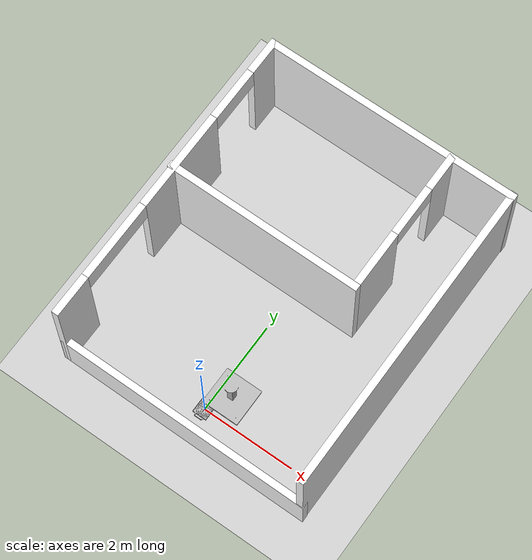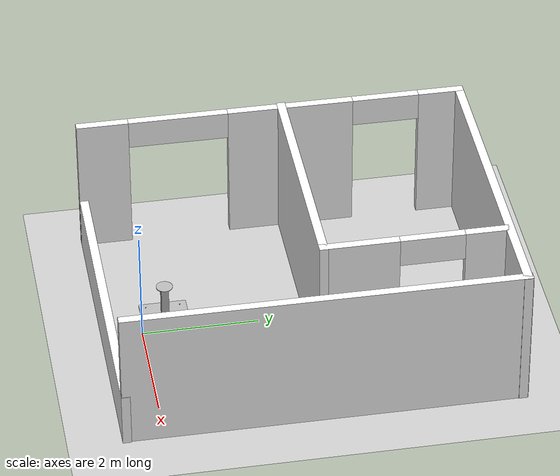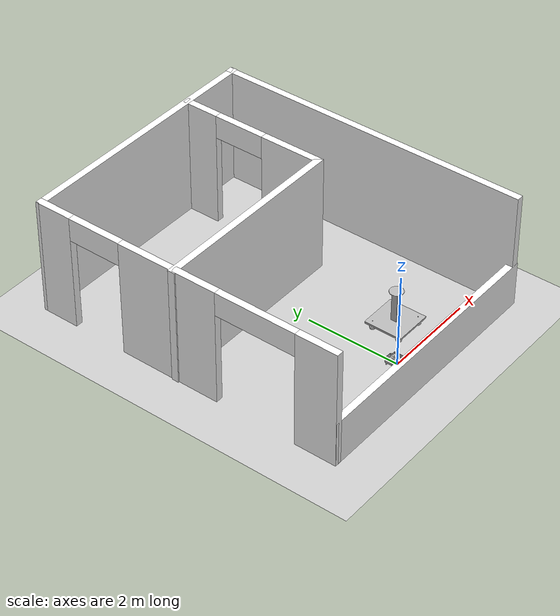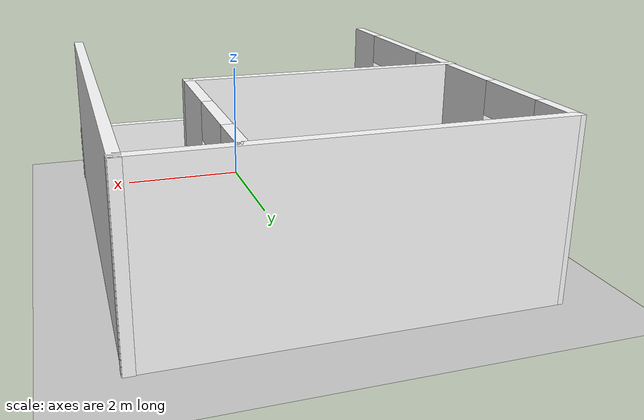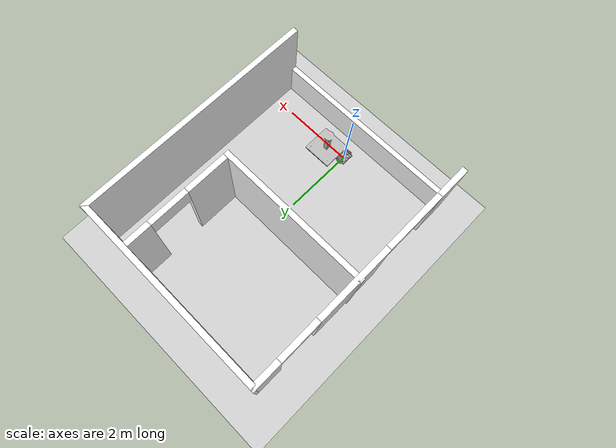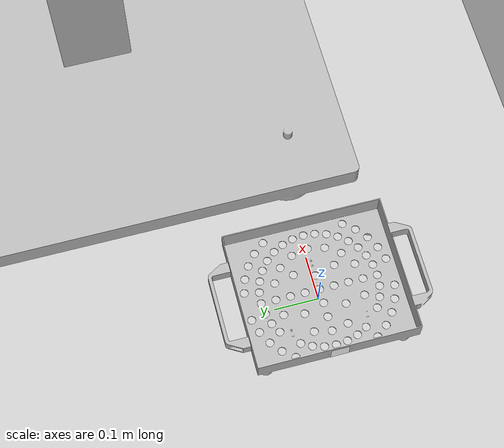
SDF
<sdf version="1.6">
 <world name="default">
  <light name="sun" type="directional">
   <pose>0 0 10 0 -0 0</pose>
   <diffuse>0.8 0.8 0.8 1</diffuse>
   <specular>0.2 0.2 0.2 1</specular>
   <attenuation>
    <range>1000</range>
    <constant>0.9</constant>
    <linear>0.01</linear>
    <quadratic>0.001</quadratic>
   </attenuation>
   <direction>-0.5 0.1 -0.9</direction>
  </light>
  <model name="ground_plane">
   <static>1</static>
   <link name="link">
    <collision name="collision">
     <geometry><plane><normal>0 0 1</normal><size>100 100</size></plane></geometry>
     <surface>
      <contact><collide_bitmask>65535</collide_bitmask></contact>
      <friction><ode><mu>100</mu><mu2>50</mu2></ode></friction>
     </surface>
     <max_contacts>99999999</max_contacts>
    </collision>
    <visual name="visual">
     <cast_shadows>0</cast_shadows>
     <geometry><plane><normal>0 0 1</normal><size>100 100</size></plane></geometry>
     <material>
      <script><uri>file://media/materials/scripts/gazebo.material</uri><name>Gazebo/Grey</name></script>
     </material>
    </visual>
   </link>
  </model>
  <gravity>0 0 -9.8</gravity>
  <magnetic_field>6e-06 2.3e-05 -4.2e-05</magnetic_field>
  <atmosphere type="adiabatic"/>
  <physics name="default_physics" default="0" type="ode">
   <max_contacts>100</max_contacts>
   <max_step_size>0.001</max_step_size>
   <real_time_factor>1</real_time_factor>
   <real_time_update_rate>1000</real_time_update_rate>
   <ode>
    <solver>
     <type>quick</type>
     <iters>50</iters>
     <sor>1.3</sor>
     <use_dynamic_moi_rescaling>0</use_dynamic_moi_rescaling>
    </solver>
    <constraints>
     <cfm>0</cfm>
     <erp>0.2</erp>
     <contact_max_correcting_vel>100</contact_max_correcting_vel>
     <contact_surface_layer>0.001</contact_surface_layer>
    </constraints>
   </ode>
  </physics>
  <scene><ambient>0.4 0.4 0.4 1</ambient><background>0.7 0.7 0.7 1</background><shadows>1</shadows></scene>
  <audio><device>default</device></audio>
  <spherical_coordinates>
   <surface_model>EARTH_WGS84</surface_model>
   <latitude_deg>0</latitude_deg>
   <longitude_deg>0</longitude_deg>
   <elevation>0</elevation>
   <heading_deg>0</heading_deg>
  </spherical_coordinates>
  <include><uri>model://UR10Base</uri><name>UR10Base</name></include>
  <include><uri>model://UR10Base</uri><name>UR10Base_1</name></include>
  <include><uri>model://CssdTray0</uri><name>CssdTray0</name></include>
  <include><uri>model://CssdTray0</uri><name>CssdTray0_1</name></include>
  <include><uri>model://CssdTray1</uri><name>CssdTray1</name></include>
  <include><uri>model://CssdTray2</uri><name>CssdTray2</name></include>
  <include><uri>model://CssdTray3</uri><name>CssdTray3</name></include>
  <include><uri>model://cssd_room</uri><name>CssdRoom</name><pose>-5 2.7 0 0 0 3.14</pose></include>
 </world>
</sdf>

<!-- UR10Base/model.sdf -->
<sdf version="1.5">
  <model name="UR10Base">
    <static>true</static>
    <link name="link">
      <pose>0 0 0 0 0 0</pose>

        <visual name="visual">
          <geometry>
            <mesh>
              <scale>0.001 0.001 0.001</scale>
              <uri>model://UR10Base/meshes/base.obj</uri>
            </mesh>
          </geometry>
        </visual>

        <collision name="collision">
          <geometry>
            <mesh>
              <scale>0.001 0.001 0.001</scale>
              <uri>model://UR10Base/meshes/base.obj</uri>
            </mesh>
          </geometry>
        </collision>

    </link>
  </model>
</sdf>

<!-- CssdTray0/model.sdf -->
<sdf version='1.6'>
  <model name='CssdTray0'>
    <allow_auto_disable>0</allow_auto_disable>
    <static>0</static>

    <include>
      <uri>model://CssdTray</uri>
      <name>base</name>
    </include>

    <include>
      <name>aruco_tag</name>
      <uri>model://aruco_visual_marker_0</uri>
      <pose> -0.154 0.0 0.0824 0 -1.57 0.0</pose>
      <static>true</static>
    </include>

    <joint name="aruco_tag_joint" type="revolute">
      <parent>base::tray</parent>
      <child>aruco_tag::marker</child>
      <!-- Common hack to make this a "fixed" joint -->
      <axis>
        <limit>
          <lower>0.0</lower>
          <upper>0.0</upper>
        </limit>
      </axis>

    </joint>
  </model>
</sdf>

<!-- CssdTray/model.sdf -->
<sdf version="1.6">
  <model name="CssdTray">
    <static>false</static>
    <link name="tray">
      <pose> 0 0 0 0 0 3.14 </pose>
       <inertial>
         <!-- tentative mass -->
        <mass>5.0</mass>
        <pose>0 0 -0.01 0 0 0</pose>
        <inertia>
          <ixx>0.2026</ixx>
          <ixy>0</ixy>
          <ixz>0</ixz>
          <iyy>0.206</iyy>
          <iyz>0</iyz>
          <izz>0.255</izz>
        </inertia>
      </inertial>

      <!-- Extents: (+/- 0.15, +/- 0.175, [0.058, 0.06]),  -->
      <collision name="tray floor">
        <pose> 0.0  0.0  0.06  0.0  0.0  0.0</pose>
        <geometry>
          <box>
            <size>0.30 0.35 0.004</size>
          </box>
        </geometry>
        <surface>
          <contact>
            <ode>
              <kp>1000000.0</kp>
              <kd>1.0</kd>
              <mu1>0.8</mu1>
              <mu2>0.8</mu2>
              <maxVel>0.0</maxVel>
              <minDepth>0.001</minDepth>
            </ode>
          </contact>
        </surface>
      </collision>
      <collision name="tray pegs">
        <geometry>
          <mesh>
            <scale>1 1 1</scale>
            <uri>model://CssdTray/meshes/tray_pegs.stl</uri>
          </mesh>
        </geometry>
      </collision>

      <!-- Center Bottom: (0.128, 0.153, 0.01) -->
      <!-- radius: 0.015 -->
      <!-- height: 0.048-->
      <collision name="front left leg">
        <pose>0.128 0.153 0.034 0 0 0</pose>
        <geometry>
          <cylinder>
            <radius>0.015</radius>
            <length>0.048</length>
          </cylinder>
        </geometry>
      </collision>
      <collision name="front right leg">
        <pose>-0.128 0.153 0.034 0 0 0</pose>
        <geometry>
          <cylinder>
            <radius>0.015</radius>
            <length>0.048</length>
          </cylinder>
        </geometry>
      </collision>
      <collision name="back left leg">
        <pose>0.128 -0.153 0.034 0 0 0</pose>
        <geometry>
          <cylinder>
            <radius>0.015</radius>
            <length>0.048</length>
          </cylinder>
        </geometry>
      </collision>
      <collision name="back right leg">
        <pose>-0.128 -0.153 0.034 0 0 0</pose>
        <geometry>
          <cylinder>
            <radius>0.015</radius>
            <length>0.048</length>
          </cylinder>
        </geometry>
      </collision>

      <visual name='visual'>
        <geometry>
          <mesh>
            <scale>1 1 1</scale>
            <uri>model://CssdTray/meshes/Tray_Assem_Locating_Stand-off.STL</uri>
          </mesh>
        </geometry>
      </visual>
    </link>
  </model>
</sdf>

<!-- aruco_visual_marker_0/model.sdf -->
<sdf version='1.5'>
  <model name='aruco_visual_marker_0'>

    <link name='marker'>
      <pose frame=''>0 0 0 0 0 0</pose>
      <visual name='visual'>
        <geometry>
          <box>
            <size>0.04 0.04 1e-5</size>
          </box>
        </geometry>
        <material>
          <script>
            <uri>model://aruco_visual_marker_0/materials/scripts</uri>
            <uri>model://aruco_visual_marker_0/materials/textures</uri>
            <name>ArucoVisualMarker0/Marker</name>
          </script>
          <ambient>1 1 1 1</ambient>
          <diffuse>1 1 1 1</diffuse>
          <specular>0 0 0 1</specular>
          <emissive>1 1 1 0</emissive>
          <shader type='vertex'>
            <normal_map>__default__</normal_map>
          </shader>
        </material>
        <pose frame=''>0 0 0 0 -0 0</pose>
        <cast_shadows>1</cast_shadows>
        <transparency>0</transparency>
      </visual>

        <laser_retro>0</laser_retro>
        <max_contacts>10</max_contacts>
        <pose frame=''>0 0 0 0 -0 0</pose>
        <geometry>
          <box>
            <size>0.04 0.04 1e-05</size>
          </box>
        </geometry>

    </link>

    <link name='marker_pad'>
      <pose frame='marker'>0 0 -1e-5 0 -0 0</pose>
      <visual name='visual'>
        <geometry>
          <box>
            <size>0.04 0.04 1e-5</size>
          </box>
        </geometry>
        <material>
          <lighting>1</lighting>
          <script>
            <uri>file://media/materials/scripts/gazebo.material</uri>
            <name>Gazebo/White</name>
          </script>
          <ambient>0.3 0.3 0.3 1</ambient>
          <diffuse>0.7 0.7 0.7 1</diffuse>
          <specular>0.01 0.01 0.01 1</specular>
          <emissive>1 1 1 0</emissive>
          <shader type='vertex'>
            <normal_map>__default__</normal_map>
          </shader>
        </material>
        <cast_shadows>1</cast_shadows>
        <transparency>0</transparency>
      </visual>

        <laser_retro>0</laser_retro>
        <max_contacts>10</max_contacts>
        <pose frame=''>0 0 0 0 -0 0</pose>
        <geometry>
          <box>
            <size>0.04 0.04 1e-5</size>
          </box>
        </geometry>

    </link>

    <joint name='marker_JOINT_marker_pad' type='revolute'>
      <parent>marker</parent>
      <child>marker_pad</child>
      <pose frame=''>0 0 0 0 -0 0</pose>
      <axis>
        <xyz>0 0 1</xyz>
        <limit>
          <upper>0</upper>
          <lower>0</lower>
        </limit>
      </axis>
    </joint>

    <static>1</static>
    <allow_auto_disable>1</allow_auto_disable>

  </model>
</sdf>

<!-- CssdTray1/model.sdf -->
<sdf version='1.6'>
  <model name='CssdTray1'>
    <allow_auto_disable>0</allow_auto_disable>
    <static>0</static>

    <include>
      <uri>model://CssdTray</uri>
      <name>base</name>
    </include>

    <include>
        <name>aruco_tag</name>
        <uri>model://aruco_visual_marker_1</uri>
        <pose> -0.154 0.0 0.0824 0 -1.57 0.0</pose>
        <static>true</static>
      </include>

      <joint name="aruco_tag_joint" type="revolute">
        <parent>base::tray</parent>
        <child>aruco_tag::marker</child>
        <!-- Common hack to make this a "fixed" joint -->
        <axis>
          <limit>
            <lower>0.0</lower>
            <upper>0.0</upper>
          </limit>
        </axis>

    </joint>
  </model>
</sdf>

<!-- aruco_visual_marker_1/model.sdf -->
<sdf version='1.5'>
  <model name='aruco_visual_marker_1'>

    <link name='marker'>
      <pose frame=''>0 0 0 0 0 0</pose>
      <visual name='visual'>
        <geometry>
          <box>
            <size>0.04 0.04 1e-5</size>
          </box>
        </geometry>
        <material>
          <script>
            <uri>model://aruco_visual_marker_1/materials/scripts</uri>
            <uri>model://aruco_visual_marker_1/materials/textures</uri>
            <name>ArucoVisualMarker1/Marker</name>
          </script>
          <ambient>1 1 1 1</ambient>
          <diffuse>1 1 1 1</diffuse>
          <specular>0 0 0 1</specular>
          <emissive>1 1 1 0</emissive>
          <shader type='vertex'>
            <normal_map>__default__</normal_map>
          </shader>
        </material>
        <pose frame=''>0 0 0 0 -0 0</pose>
        <cast_shadows>1</cast_shadows>
        <transparency>0</transparency>
      </visual>
        <laser_retro>0</laser_retro>
        <max_contacts>10</max_contacts>
        <pose frame=''>0 0 0 0 -0 0</pose>
        <geometry>
          <box>
            <size>0.04 0.04 1e-05</size>
          </box>
        </geometry>
    </link>

    <link name='marker_pad'>
      <pose frame='marker'>0 0 -1e-5 0 -0 0</pose>
      <visual name='visual'>
        <geometry>
          <box>
            <size>0.04 0.04 1e-5</size>
          </box>
        </geometry>
        <material>
          <lighting>1</lighting>
          <script>
            <uri>file://media/materials/scripts/gazebo.material</uri>
            <name>Gazebo/White</name>
          </script>
          <ambient>0.3 0.3 0.3 1</ambient>
          <diffuse>0.7 0.7 0.7 1</diffuse>
          <specular>0.01 0.01 0.01 1</specular>
          <emissive>1 1 1 0</emissive>
          <shader type='vertex'>
            <normal_map>__default__</normal_map>
          </shader>
        </material>
        <cast_shadows>1</cast_shadows>
        <transparency>0</transparency>
      </visual>
        <laser_retro>0</laser_retro>
        <max_contacts>10</max_contacts>
        <pose frame=''>0 0 0 0 -0 0</pose>
        <geometry>
          <box>
            <size>0.04 0.04 1e-5</size>
          </box>
        </geometry>
    </link>

    <joint name='marker_JOINT_marker_pad' type='revolute'>
      <parent>marker</parent>
      <child>marker_pad</child>
      <pose frame=''>0 0 0 0 -0 0</pose>
      <axis>
        <xyz>0 0 1</xyz>
        <limit>
          <upper>0</upper>
          <lower>0</lower>
        </limit>
      </axis>
    </joint>

    <static>1</static>
    <allow_auto_disable>1</allow_auto_disable>

  </model>
</sdf>

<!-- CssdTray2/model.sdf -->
<sdf version='1.6'>
  <model name='CssdTray2'>
    <allow_auto_disable>0</allow_auto_disable>
    <static>0</static>

    <include>
      <uri>model://CssdTray</uri>
      <name>base</name>
    </include>
    <include>
      <name>aruco_tag</name>
      <uri>model://aruco_visual_marker_2</uri>
      <pose> -0.154 0.0 0.0824 0 -1.57 0.0</pose>
      <static>true</static>
    </include>

    <joint name="aruco_tag_joint" type="revolute">
      <parent>base::tray</parent>
      <child>aruco_tag::marker</child>
      <!-- Common hack to make this a "fixed" joint -->
      <axis>
        <limit>
          <lower>0.0</lower>
          <upper>0.0</upper>
        </limit>
      </axis>

    </joint>
  </model>
</sdf>

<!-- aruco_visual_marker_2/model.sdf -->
<sdf version='1.5'>
  <model name='aruco_visual_marker_2'>

    <link name='marker'>
      <pose frame=''>0 0 0 0 0 0</pose>
      <visual name='visual'>
        <geometry>
          <box>
            <size>0.04 0.04 1e-5</size>
          </box>
        </geometry>
        <material>
          <script>
            <uri>model://aruco_visual_marker_2/materials/scripts</uri>
            <uri>model://aruco_visual_marker_2/materials/textures</uri>
            <name>ArucoVisualMarker2/Marker</name>
          </script>
          <ambient>1 1 1 1</ambient>
          <diffuse>1 1 1 1</diffuse>
          <specular>0 0 0 1</specular>
          <emissive>1 1 1 0</emissive>
          <shader type='vertex'>
            <normal_map>__default__</normal_map>
          </shader>
        </material>
        <pose frame=''>0 0 0 0 -0 0</pose>
        <cast_shadows>1</cast_shadows>
        <transparency>0</transparency>
      </visual>

        <laser_retro>0</laser_retro>
        <max_contacts>10</max_contacts>
        <pose frame=''>0 0 0 0 -0 0</pose>
        <geometry>
          <box>
            <size>0.04 0.04 1e-05</size>
          </box>
        </geometry>

    </link>

    <link name='marker_pad'>
      <pose frame='marker'>0 0 -1e-5 0 -0 0</pose>
      <visual name='visual'>
        <geometry>
          <box>
            <size>0.04 0.04 1e-5</size>
          </box>
        </geometry>
        <material>
          <lighting>1</lighting>
          <script>
            <uri>file://media/materials/scripts/gazebo.material</uri>
            <name>Gazebo/White</name>
          </script>
          <ambient>0.3 0.3 0.3 1</ambient>
          <diffuse>0.7 0.7 0.7 1</diffuse>
          <specular>0.01 0.01 0.01 1</specular>
          <emissive>1 1 1 0</emissive>
          <shader type='vertex'>
            <normal_map>__default__</normal_map>
          </shader>
        </material>
        <cast_shadows>1</cast_shadows>
        <transparency>0</transparency>
      </visual>

        <laser_retro>0</laser_retro>
        <max_contacts>10</max_contacts>
        <pose frame=''>0 0 0 0 -0 0</pose>
        <geometry>
          <box>
            <size>0.04 0.04 1e-5</size>
          </box>
        </geometry>

    </link>

    <joint name='marker_JOINT_marker_pad' type='revolute'>
      <parent>marker</parent>
      <child>marker_pad</child>
      <pose frame=''>0 0 0 0 -0 0</pose>
      <axis>
        <xyz>0 0 1</xyz>
        <limit>
          <upper>0</upper>
          <lower>0</lower>
        </limit>
      </axis>
    </joint>

    <static>1</static>
    <allow_auto_disable>1</allow_auto_disable>

  </model>
</sdf>

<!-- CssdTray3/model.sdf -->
<sdf version='1.6'>
  <model name='CssdTray3'>
    <allow_auto_disable>0</allow_auto_disable>
    <static>0</static>

    <include>
      <uri>model://CssdTray</uri>
      <name>base</name>
    </include>

    <include>
      <name>aruco_tag</name>
      <uri>model://aruco_visual_marker_3</uri>
      <pose> -0.154 0.0 0.0824 0 -1.57 0.0</pose>
      <static>true</static>
    </include>

    <joint name="aruco_tag_joint" type="revolute">
      <parent>base::tray</parent>
      <child>aruco_tag::marker</child>
      <!-- Common hack to make this a "fixed" joint -->
      <axis>
        <limit>
          <lower>0.0</lower>
          <upper>0.0</upper>
        </limit>
      </axis>

    </joint>
  </model>
</sdf>

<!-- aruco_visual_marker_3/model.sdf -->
<sdf version='1.5'>
  <model name='aruco_visual_marker_3'>

    <link name='marker'>
      <pose frame=''>0 0 0 0 0 0</pose>
      <visual name='visual'>
        <geometry>
          <box>
            <size>0.04 0.04 1e-5</size>
          </box>
        </geometry>
        <material>
          <script>
            <uri>model://aruco_visual_marker_3/materials/scripts</uri>
            <uri>model://aruco_visual_marker_3/materials/textures</uri>
            <name>ArucoVisualMarker3/Marker</name>
          </script>
          <ambient>1 1 1 1</ambient>
          <diffuse>1 1 1 1</diffuse>
          <specular>0 0 0 1</specular>
          <emissive>1 1 1 0</emissive>
          <shader type='vertex'>
            <normal_map>__default__</normal_map>
          </shader>
        </material>
        <pose frame=''>0 0 0 0 -0 0</pose>
        <cast_shadows>1</cast_shadows>
        <transparency>0</transparency>
      </visual>

        <laser_retro>0</laser_retro>
        <max_contacts>10</max_contacts>
        <pose frame=''>0 0 0 0 -0 0</pose>
        <geometry>
          <box>
            <size>0.04 0.04 1e-05</size>
          </box>
        </geometry>

    </link>

    <link name='marker_pad'>
      <pose frame='marker'>0 0 -1e-5 0 -0 0</pose>
      <visual name='visual'>
        <geometry>
          <box>
            <size>0.04 0.04 1e-5</size>
          </box>
        </geometry>
        <material>
          <lighting>1</lighting>
          <script>
            <uri>file://media/materials/scripts/gazebo.material</uri>
            <name>Gazebo/White</name>
          </script>
          <ambient>0.3 0.3 0.3 1</ambient>
          <diffuse>0.7 0.7 0.7 1</diffuse>
          <specular>0.01 0.01 0.01 1</specular>
          <emissive>1 1 1 0</emissive>
          <shader type='vertex'>
            <normal_map>__default__</normal_map>
          </shader>
        </material>
        <cast_shadows>1</cast_shadows>
        <transparency>0</transparency>
      </visual>

        <laser_retro>0</laser_retro>
        <max_contacts>10</max_contacts>
        <pose frame=''>0 0 0 0 -0 0</pose>
        <geometry>
          <box>
            <size>0.04 0.04 1e-5</size>
          </box>
        </geometry>

    </link>

    <joint name='marker_JOINT_marker_pad' type='revolute'>
      <parent>marker</parent>
      <child>marker_pad</child>
      <pose frame=''>0 0 0 0 -0 0</pose>
      <axis>
        <xyz>0 0 1</xyz>
        <limit>
          <upper>0</upper>
          <lower>0</lower>
        </limit>
      </axis>
    </joint>

    <static>1</static>
    <allow_auto_disable>1</allow_auto_disable>

  </model>
</sdf>

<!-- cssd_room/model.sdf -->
<sdf version='1.6'>
  <model name='cssd_room'>
    <pose frame=''>-7.77555 -1.45787 0 0 -0 0</pose>
    <link name='Wall_0'>
      <pose frame=''>-2.28555 0.005002 0 0 -0 1.56929</pose>
      <visual name='Wall_0_Visual_0'>
        <pose frame=''>-2.98955 0 1.25 0 -0 0</pose>
        <geometry>
          <box>
            <size>0.800907 0.15 2.5</size>
          </box>
        </geometry>
        <material>
          <script>
            <uri>model://cssd_room/materials/scripts/SimpleWall.material</uri>
            <name>SimpleWall</name>
          </script>
          <ambient>1 1 1 1</ambient>
        </material>
        <meta>
          <layer>0</layer>
        </meta>
      </visual>
      <collision name='Wall_0_Collision_0'>
        <geometry>
          <box>
            <size>0.800907 0.15 2.5</size>
          </box>
        </geometry>
        <pose frame=''>-2.98955 0 1.25 0 -0 0</pose>
      </collision>
      <visual name='Wall_0_Visual_1'>
        <pose frame=''>-0.333364 0 1.25 0 -0 0</pose>
        <geometry>
          <box>
            <size>2.19146 0.15 2.5</size>
          </box>
        </geometry>
        <material>
          <script>
            <uri>model://cssd_room/materials/scripts/SimpleWall.material</uri>
            <name>SimpleWall</name>
            </script>
          <ambient>1 1 1 1</ambient>
        </material>
        <meta>
          <layer>0</layer>
        </meta>
      </visual>
      <collision name='Wall_0_Collision_1'>
        <geometry>
          <box>
            <size>2.19146 0.15 2.5</size>
          </box>
        </geometry>
        <pose frame=''>-0.333364 0 1.25 0 -0 0</pose>
      </collision>
      <visual name='Wall_0_Visual_2'>
        <pose frame=''>2.94118 0 1.25 0 -0 0</pose>
        <geometry>
          <box>
            <size>0.897634 0.15 2.5</size>
          </box>
        </geometry>
        <material>
          <script>
            <uri>model://cssd_room/materials/scripts/SimpleWall.material</uri>
            <name>SimpleWall</name>
          </script>
          <ambient>1 1 1 1</ambient>
        </material>
        <meta>
          <layer>0</layer>
        </meta>
      </visual>
      <collision name='Wall_0_Collision_2'>
        <geometry>
          <box>
            <size>0.897634 0.15 2.5</size>
          </box>
        </geometry>
        <pose frame=''>2.94118 0 1.25 0 -0 0</pose>
      </collision>
      <visual name='Wall_0_Visual_3'>
        <pose frame=''>-2.00909 0 2.25 0 -0 0</pose>
        <geometry>
          <box>
            <size>1.16 0.15 0.5</size>
          </box>
        </geometry>
        <material>
          <script>
            <uri>model://cssd_room/materials/scripts/SimpleWall.material</uri>
            <name>SimpleWall</name>
          </script>
          <ambient>1 1 1 1</ambient>
        </material>
        <meta>
          <layer>0</layer>
        </meta>
      </visual>
      <collision name='Wall_0_Collision_3'>
        <geometry>
          <box>
            <size>1.16 0.15 0.5</size>
          </box>
        </geometry>
        <pose frame=''>-2.00909 0 2.25 0 -0 0</pose>
      </collision>
      <visual name='Wall_0_Visual_4'>
        <pose frame=''>1.62737 0 2.25 0 -0 0</pose>
        <geometry>
          <box>
            <size>1.73 0.15 0.5</size>
          </box>
        </geometry>
        <material>
          <script>
            <uri>model://cssd_room/materials/scripts/SimpleWall.material</uri>
            <name>SimpleWall</name>
          </script>
          <ambient>1 1 1 1</ambient>
        </material>
        <meta>
          <layer>0</layer>
        </meta>
      </visual>
      <collision name='Wall_0_Collision_4'>
        <geometry>
          <box>
            <size>1.73 0.15 0.5</size>
          </box>
        </geometry>
        <pose frame=''>1.62737 0 2.25 0 -0 0</pose>
      </collision>
    </link>
    <link name='Wall_1'>
      <collision name='Wall_1_Collision'>
        <geometry>
          <box>
            <size>5.55 0.15 1.1</size>
          </box>
        </geometry>
        <pose frame=''>0 0 0.4 0 -0 0</pose>
      </collision>
      <visual name='Wall_1_Visual'>
        <pose frame=''>0 0 0.4 0 -0 0</pose>
        <geometry>
          <box>
            <size>5.55 0.15 1.1</size>
          </box>
        </geometry>
        <material>
          <script>
            <uri>model://cssd_room/materials/scripts/SimpleWall.material</uri>
            <name>SimpleWall</name>
          </script>
          <ambient>1 1 1 1</ambient>
        </material>
        <meta>
          <layer>0</layer>
        </meta>
      </visual>
      <pose frame=''>-4.99055 3.32 0 0 -0 3.14159</pose>
    </link>
    <link name='Wall_2'>
      <collision name='Wall_2_Collision'>
        <geometry>
          <box>
            <size>6.78001 0.15 2.5</size>
          </box>
        </geometry>
        <pose frame=''>0 0 1.25 0 -0 0</pose>
      </collision>
      <visual name='Wall_2_Visual'>
        <pose frame=''>0 0 1.25 0 -0 0</pose>
        <geometry>
          <box>
            <size>6.78001 0.15 2.5</size>
          </box>
        </geometry>
        <material>
          <script>
            <uri>model://cssd_room/materials/scripts/SimpleWall.material</uri>
            <name>SimpleWall</name>
          </script>
          <ambient>1 1 1 1</ambient>
        </material>
        <meta>
          <layer>0</layer>
        </meta>
      </visual>
      <pose frame=''>-7.68555 -0.004998 0 0 -0 -1.57231</pose>
    </link>
    <link name='Wall_3'>
      <collision name='Wall_3_Collision'>
        <geometry>
          <box>
            <size>5.56 0.15 2.5</size>
          </box>
        </geometry>
        <pose frame=''>0 0 1.25 0 -0 0</pose>
      </collision>
      <visual name='Wall_3_Visual'>
        <pose frame=''>0 0 1.25 0 -0 0</pose>
        <geometry>
          <box>
            <size>5.56 0.15 2.5</size>
          </box>
        </geometry>
        <material>
          <script>
            <uri>model://cssd_room/materials/scripts/SimpleWall.material</uri>
            <name>SimpleWall</name>
          </script>
          <ambient>1 1 1 1</ambient>
        </material>
        <meta>
          <layer>0</layer>
        </meta>
      </visual>
      <pose frame=''>-4.99555 -3.31 0 0 -0 0</pose>
    </link>
    <link name='Wall_4'>
      <collision name='Wall_4_Collision'>
        <geometry>
          <box>
            <size>4.25 0.15 2.5</size>
          </box>
        </geometry>
        <pose frame=''>0 0 1.25 0 -0 0</pose>
      </collision>
      <visual name='Wall_4_Visual'>
        <pose frame=''>0 0 1.25 0 -0 0</pose>
        <geometry>
          <box>
            <size>4.25 0.15 2.5</size>
          </box>
        </geometry>
        <material>
          <script>
            <uri>model://cssd_room/materials/scripts/SimpleWall.material</uri>
            <name>SimpleWall</name>
          </script>
          <ambient>1 1 1 1</ambient>
        </material>
        <meta>
          <layer>0</layer>
        </meta>
      </visual>
      <pose frame=''>-4.31055 -0.179998 0 0 -0 3.14159</pose>
    </link>
    <link name='Wall_5'>
      <pose frame=''>-6.36055 -1.73 0 0 -0 -1.5708</pose>
      <visual name='Wall_5_Visual_0'>
        <pose frame=''>-0.95 0 1.25 0 -0 0</pose>
        <geometry>
          <box>
            <size>1.35 0.15 2.5</size>
          </box>
        </geometry>
        <material>
          <script>
            <uri>model://cssd_room/materials/scripts/SimpleWall.material</uri>
            <name>SimpleWall</name>
          </script>
          <ambient>1 1 1 1</ambient>
        </material>
        <meta>
          <layer>0</layer>
        </meta>
      </visual>
      <collision name='Wall_5_Collision_0'>
        <geometry>
          <box>
            <size>1.35 0.15 2.5</size>
          </box>
        </geometry>
        <pose frame=''>-0.95 0 1.25 0 -0 0</pose>
      </collision>
      <visual name='Wall_5_Visual_1'>
        <pose frame=''>1.225 0 1.25 0 -0 0</pose>
        <geometry>
          <box>
            <size>0.8 0.15 2.5</size>
          </box>
        </geometry>
        <material>
          <script>
            <uri>model://cssd_room/materials/scripts/SimpleWall.material</uri>
            <name>SimpleWall</name>
          </script>
          <ambient>1 1 1 1</ambient>
        </material>
        <meta>
          <layer>0</layer>
        </meta>
      </visual>
      <collision name='Wall_5_Collision_1'>
        <geometry>
          <box>
            <size>0.8 0.15 2.5</size>
          </box>
        </geometry>
        <pose frame=''>1.225 0 1.25 0 -0 0</pose>
      </collision>
      <visual name='Wall_5_Visual_2'>
        <pose frame=''>0.275 0 2.25 0 -0 0</pose>
        <geometry>
          <box>
            <size>1.1 0.15 0.5</size>
          </box>
        </geometry>
        <material>
          <script>
            <uri>model://cssd_room/materials/scripts/SimpleWall.material</uri>
            <name>SimpleWall</name>
          </script>
          <ambient>1 1 1 1</ambient>
        </material>
        <meta>
          <layer>0</layer>
        </meta>
      </visual>
      <collision name='Wall_5_Collision_2'>
        <geometry>
          <box>
            <size>1.1 0.15 0.5</size>
          </box>
        </geometry>
        <pose frame=''>0.275 0 2.25 0 -0 0</pose>
      </collision>
    </link>
    <static>1</static>
  </model>
</sdf>
